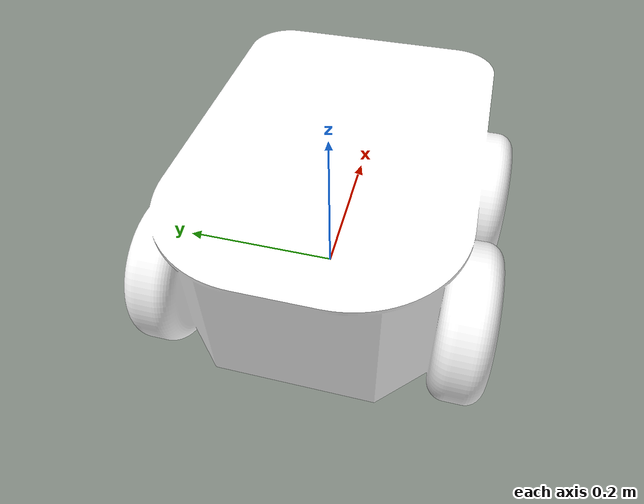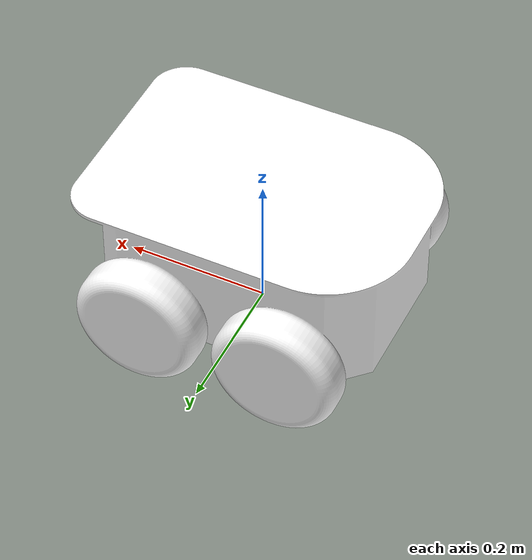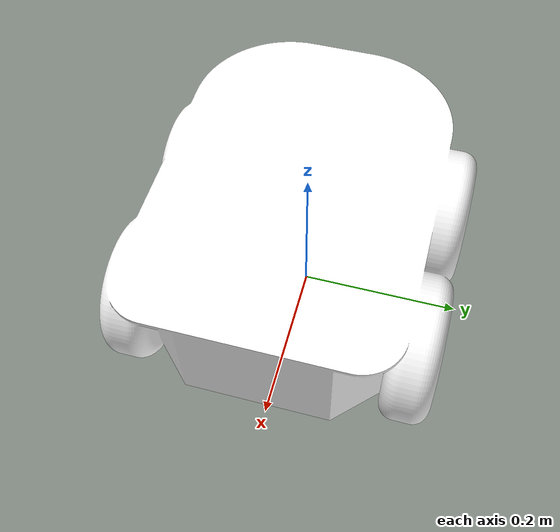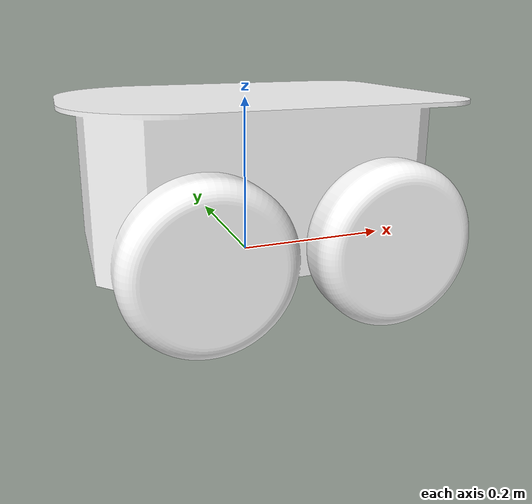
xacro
<?xml version="1.0"?>
<robot xmlns:xacro="http://www.ros.org/wiki/xacro" name="pioneer_rover">
  <xacro:arg name="r" default="1.0"/>
  <xacro:arg name="g" default="1.0"/>
  <xacro:arg name="b" default="1.0"/>
  <xacro:arg name="a" default="1.0"/>
  <xacro:arg name="mesh_enabled" default="true"/>

  <link name="world"/>

  <xacro:macro name="p_instance" params="r g b a">
      <link name="base_link"/>
      <link name="x_axis"/>
      <link name="y_axis"/>
      <link name="theta_axis"/>

      <link name="rover_link">
        <inertial>
          <origin xyz="0.0 0.0 0.0" rpy="0 0 0"/>
          <mass value="3.978"/>
          <inertia ixx="0.021858680" ixy="0.0" ixz="0.010020353"
                    iyy="0.078572349" iyz="0.0"
                    izz="0.091971324"/>
        </inertial>
        <visual>
          <xacro:if value="$(arg mesh_enabled)">
            <origin xyz="0.0 0.0 0.0" rpy="1.57 0.0 1.57"/>
            <geometry>
              <mesh filename="package://rover_description/meshes/pioneer_cad_v2.stl"
                    scale="0.001 0.001 0.001"/>
            </geometry>
            <material name="CustomColor">
              <color rgba="${r} ${g} ${b} ${a}"/>
            </material>
          </xacro:if>
        </visual>
      </link>

      <joint name="w_to_x" type="prismatic">
        <parent link="world"/>
        <child link="x_axis"/>
        <axis xyz="1 0 0"/>
        <origin xyz="0.0 0.0 0.0" rpy="0 0 0" />
        <limit lower="-200.0" upper="200.0" effort="0.5" velocity="0.5"/>
      </joint>
      <joint name="x_to_y" type="prismatic">
        <parent link="x_axis"/>
        <child link="y_axis"/>
        <axis xyz="0 1 0"/>
        <origin xyz="0.0 0.0 0.0" rpy="0 0 0" />
        <limit lower="-200.0" upper="200.0" effort="0.5" velocity="0.5"/>
      </joint>
      <joint name="y_to_t" type="revolute">
        <parent link="y_axis"/>
        <child link="theta_axis"/>
        <axis xyz="0 0 1"/>
        <origin xyz="0.0 0.0 0.0" rpy="0.0 0.0 0.0" />
        <limit lower="-3" upper="3" effort="0.5" velocity="0.5"/>
      </joint>
      <joint name="t_to_b" type="fixed">
        <parent link="theta_axis"/>
        <child link="base_link"/>
      </joint>

      <joint name = "base_joint"  type = "fixed">
          <parent link="base_link"/>
          <child link="rover_link"/>
          <origin xyz="0.0 0.0 0.02" rpy="0 0 0" />
          <axis xyz="0 0 0" rpy="0 0 0" />
      </joint>
  </xacro:macro>

  <xacro:p_instance r="$(arg r)" g="$(arg g)" b="$(arg b)" a="$(arg a)"/>
</robot>
